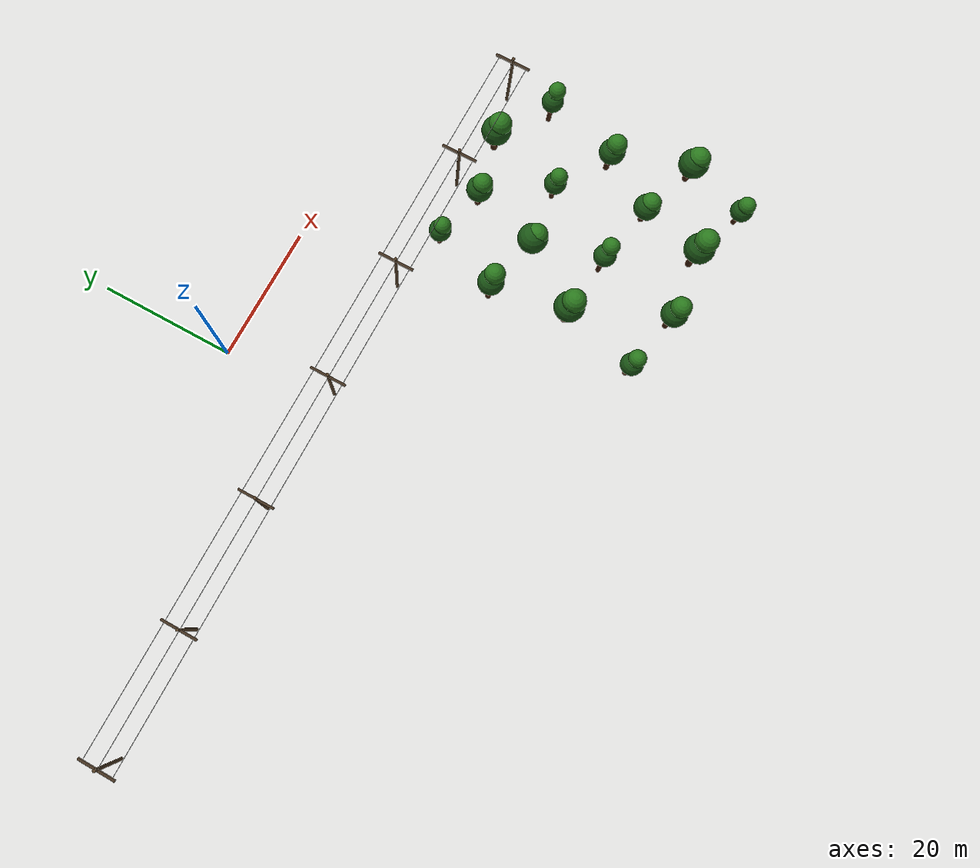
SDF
<sdf version="1.6">
 <world name="uav_complex_120m">
  <model name="tree_0">
   <static>true</static>
   <link name="trunk">
    <pose>0 0 1.44 0 0 0</pose>
    <collision name="collision">
     <geometry><cylinder><radius>0.352</radius><length>2.88</length></cylinder></geometry>
     <laser_retro>100</laser_retro>
     <surface><friction><ode><mu>1.0</mu><mu2>1.0</mu2></ode></friction></surface>
    </collision>
    <visual name="visual">
     <geometry><cylinder><radius>0.352</radius><length>2.88</length></cylinder></geometry>
     <material>
      <ambient>0.28 0.14 0.055 1</ambient>
      <diffuse>0.28 0.14 0.055 1</diffuse>
      <specular>0.08 0.08 0.08 1</specular>
     </material>
    </visual>
   </link>
   <link name="lower_crown">
    <pose>0 0 3.92 0 0 0</pose>
    <collision name="collision">
     <geometry><sphere><radius>1.6</radius></sphere></geometry>
     <laser_retro>100</laser_retro>
     <surface><friction><ode><mu>1.0</mu><mu2>1.0</mu2></ode></friction></surface>
    </collision>
    <visual name="visual">
     <geometry><sphere><radius>1.6</radius></sphere></geometry>
     <material>
      <ambient>0.1 0.33 0.08 1</ambient>
      <diffuse>0.1 0.33 0.08 1</diffuse>
      <specular>0.08 0.08 0.08 1</specular>
     </material>
    </visual>
   </link>
   <link name="upper_crown">
    <pose>0.288 -0.192 5.2 0 0 0</pose>
    <collision name="collision">
     <geometry><sphere><radius>1.248</radius></sphere></geometry>
     <laser_retro>100</laser_retro>
     <surface><friction><ode><mu>1.0</mu><mu2>1.0</mu2></ode></friction></surface>
    </collision>
    <visual name="visual">
     <geometry><sphere><radius>1.248</radius></sphere></geometry>
     <material>
      <ambient>0.16 0.46 0.11 1</ambient>
      <diffuse>0.16 0.46 0.11 1</diffuse>
      <specular>0.08 0.08 0.08 1</specular>
     </material>
    </visual>
   </link>
   <pose>29 -18 0 0 0 0</pose>
  </model>
  <model name="tree_1">
   <static>true</static>
   <link name="trunk">
    <pose>0 0 1.62 0 0 0</pose>
    <collision name="collision">
     <geometry><cylinder><radius>0.4136</radius><length>3.24</length></cylinder></geometry>
     <laser_retro>100</laser_retro>
     <surface><friction><ode><mu>1.0</mu><mu2>1.0</mu2></ode></friction></surface>
    </collision>
    <visual name="visual">
     <geometry><cylinder><radius>0.4136</radius><length>3.24</length></cylinder></geometry>
     <material>
      <ambient>0.28 0.14 0.055 1</ambient>
      <diffuse>0.28 0.14 0.055 1</diffuse>
      <specular>0.08 0.08 0.08 1</specular>
     </material>
    </visual>
   </link>
   <link name="lower_crown">
    <pose>0 0 4.462 0 0 0</pose>
    <collision name="collision">
     <geometry><sphere><radius>1.88</radius></sphere></geometry>
     <laser_retro>100</laser_retro>
     <surface><friction><ode><mu>1.0</mu><mu2>1.0</mu2></ode></friction></surface>
    </collision>
    <visual name="visual">
     <geometry><sphere><radius>1.88</radius></sphere></geometry>
     <material>
      <ambient>0.1 0.33 0.08 1</ambient>
      <diffuse>0.1 0.33 0.08 1</diffuse>
      <specular>0.08 0.08 0.08 1</specular>
     </material>
    </visual>
   </link>
   <link name="upper_crown">
    <pose>0.3384 -0.2256 5.81 0 0 0</pose>
    <collision name="collision">
     <geometry><sphere><radius>1.4664</radius></sphere></geometry>
     <laser_retro>100</laser_retro>
     <surface><friction><ode><mu>1.0</mu><mu2>1.0</mu2></ode></friction></surface>
    </collision>
    <visual name="visual">
     <geometry><sphere><radius>1.4664</radius></sphere></geometry>
     <material>
      <ambient>0.16 0.46 0.11 1</ambient>
      <diffuse>0.16 0.46 0.11 1</diffuse>
      <specular>0.08 0.08 0.08 1</specular>
     </material>
    </visual>
   </link>
   <pose>37 -20 0 0 0 0</pose>
  </model>
  <model name="tree_2">
   <static>true</static>
   <link name="trunk">
    <pose>0 0 1.8 0 0 0</pose>
    <collision name="collision">
     <geometry><cylinder><radius>0.4752</radius><length>3.6</length></cylinder></geometry>
     <laser_retro>100</laser_retro>
     <surface><friction><ode><mu>1.0</mu><mu2>1.0</mu2></ode></friction></surface>
    </collision>
    <visual name="visual">
     <geometry><cylinder><radius>0.4752</radius><length>3.6</length></cylinder></geometry>
     <material>
      <ambient>0.28 0.14 0.055 1</ambient>
      <diffuse>0.28 0.14 0.055 1</diffuse>
      <specular>0.08 0.08 0.08 1</specular>
     </material>
    </visual>
   </link>
   <link name="lower_crown">
    <pose>0 0 5.004 0 0 0</pose>
    <collision name="collision">
     <geometry><sphere><radius>2.16</radius></sphere></geometry>
     <laser_retro>100</laser_retro>
     <surface><friction><ode><mu>1.0</mu><mu2>1.0</mu2></ode></friction></surface>
    </collision>
    <visual name="visual">
     <geometry><sphere><radius>2.16</radius></sphere></geometry>
     <material>
      <ambient>0.1 0.33 0.08 1</ambient>
      <diffuse>0.1 0.33 0.08 1</diffuse>
      <specular>0.08 0.08 0.08 1</specular>
     </material>
    </visual>
   </link>
   <link name="upper_crown">
    <pose>0.3888 -0.2592 6.42 0 0 0</pose>
    <collision name="collision">
     <geometry><sphere><radius>1.6848</radius></sphere></geometry>
     <laser_retro>100</laser_retro>
     <surface><friction><ode><mu>1.0</mu><mu2>1.0</mu2></ode></friction></surface>
    </collision>
    <visual name="visual">
     <geometry><sphere><radius>1.6848</radius></sphere></geometry>
     <material>
      <ambient>0.16 0.46 0.11 1</ambient>
      <diffuse>0.16 0.46 0.11 1</diffuse>
      <specular>0.08 0.08 0.08 1</specular>
     </material>
    </visual>
   </link>
   <pose>46 -18 0 0 0 0</pose>
  </model>
  <model name="tree_3">
   <static>true</static>
   <link name="trunk">
    <pose>0 0 1.98 0 0 0</pose>
    <collision name="collision">
     <geometry><cylinder><radius>0.352</radius><length>3.96</length></cylinder></geometry>
     <laser_retro>100</laser_retro>
     <surface><friction><ode><mu>1.0</mu><mu2>1.0</mu2></ode></friction></surface>
    </collision>
    <visual name="visual">
     <geometry><cylinder><radius>0.352</radius><length>3.96</length></cylinder></geometry>
     <material>
      <ambient>0.28 0.14 0.055 1</ambient>
      <diffuse>0.28 0.14 0.055 1</diffuse>
      <specular>0.08 0.08 0.08 1</specular>
     </material>
    </visual>
   </link>
   <link name="lower_crown">
    <pose>0 0 5 0 0 0</pose>
    <collision name="collision">
     <geometry><sphere><radius>1.6</radius></sphere></geometry>
     <laser_retro>100</laser_retro>
     <surface><friction><ode><mu>1.0</mu><mu2>1.0</mu2></ode></friction></surface>
    </collision>
    <visual name="visual">
     <geometry><sphere><radius>1.6</radius></sphere></geometry>
     <material>
      <ambient>0.1 0.33 0.08 1</ambient>
      <diffuse>0.1 0.33 0.08 1</diffuse>
      <specular>0.08 0.08 0.08 1</specular>
     </material>
    </visual>
   </link>
   <link name="upper_crown">
    <pose>0.288 -0.192 7.45 0 0 0</pose>
    <collision name="collision">
     <geometry><sphere><radius>1.248</radius></sphere></geometry>
     <laser_retro>100</laser_retro>
     <surface><friction><ode><mu>1.0</mu><mu2>1.0</mu2></ode></friction></surface>
    </collision>
    <visual name="visual">
     <geometry><sphere><radius>1.248</radius></sphere></geometry>
     <material>
      <ambient>0.16 0.46 0.11 1</ambient>
      <diffuse>0.16 0.46 0.11 1</diffuse>
      <specular>0.08 0.08 0.08 1</specular>
     </material>
    </visual>
   </link>
   <pose>54 -23 0 0 0 0</pose>
  </model>
  <model name="tree_4">
   <static>true</static>
   <link name="trunk">
    <pose>0 0 2.16 0 0 0</pose>
    <collision name="collision">
     <geometry><cylinder><radius>0.4136</radius><length>4.32</length></cylinder></geometry>
     <laser_retro>100</laser_retro>
     <surface><friction><ode><mu>1.0</mu><mu2>1.0</mu2></ode></friction></surface>
    </collision>
    <visual name="visual">
     <geometry><cylinder><radius>0.4136</radius><length>4.32</length></cylinder></geometry>
     <material>
      <ambient>0.28 0.14 0.055 1</ambient>
      <diffuse>0.28 0.14 0.055 1</diffuse>
      <specular>0.08 0.08 0.08 1</specular>
     </material>
    </visual>
   </link>
   <link name="lower_crown">
    <pose>0 0 5.542 0 0 0</pose>
    <collision name="collision">
     <geometry><sphere><radius>1.88</radius></sphere></geometry>
     <laser_retro>100</laser_retro>
     <surface><friction><ode><mu>1.0</mu><mu2>1.0</mu2></ode></friction></surface>
    </collision>
    <visual name="visual">
     <geometry><sphere><radius>1.88</radius></sphere></geometry>
     <material>
      <ambient>0.1 0.33 0.08 1</ambient>
      <diffuse>0.1 0.33 0.08 1</diffuse>
      <specular>0.08 0.08 0.08 1</specular>
     </material>
    </visual>
   </link>
   <link name="upper_crown">
    <pose>0.3384 -0.2256 8.06 0 0 0</pose>
    <collision name="collision">
     <geometry><sphere><radius>1.4664</radius></sphere></geometry>
     <laser_retro>100</laser_retro>
     <surface><friction><ode><mu>1.0</mu><mu2>1.0</mu2></ode></friction></surface>
    </collision>
    <visual name="visual">
     <geometry><sphere><radius>1.4664</radius></sphere></geometry>
     <material>
      <ambient>0.16 0.46 0.11 1</ambient>
      <diffuse>0.16 0.46 0.11 1</diffuse>
      <specular>0.08 0.08 0.08 1</specular>
     </material>
    </visual>
   </link>
   <pose>25 -28 0 0 0 0</pose>
  </model>
  <model name="tree_5">
   <static>true</static>
   <link name="trunk">
    <pose>0 0 1.44 0 0 0</pose>
    <collision name="collision">
     <geometry><cylinder><radius>0.4752</radius><length>2.88</length></cylinder></geometry>
     <laser_retro>100</laser_retro>
     <surface><friction><ode><mu>1.0</mu><mu2>1.0</mu2></ode></friction></surface>
    </collision>
    <visual name="visual">
     <geometry><cylinder><radius>0.4752</radius><length>2.88</length></cylinder></geometry>
     <material>
      <ambient>0.28 0.14 0.055 1</ambient>
      <diffuse>0.28 0.14 0.055 1</diffuse>
      <specular>0.08 0.08 0.08 1</specular>
     </material>
    </visual>
   </link>
   <link name="lower_crown">
    <pose>0 0 4.284 0 0 0</pose>
    <collision name="collision">
     <geometry><sphere><radius>2.16</radius></sphere></geometry>
     <laser_retro>100</laser_retro>
     <surface><friction><ode><mu>1.0</mu><mu2>1.0</mu2></ode></friction></surface>
    </collision>
    <visual name="visual">
     <geometry><sphere><radius>2.16</radius></sphere></geometry>
     <material>
      <ambient>0.1 0.33 0.08 1</ambient>
      <diffuse>0.1 0.33 0.08 1</diffuse>
      <specular>0.08 0.08 0.08 1</specular>
     </material>
    </visual>
   </link>
   <link name="upper_crown">
    <pose>0.3888 -0.2592 4.92 0 0 0</pose>
    <collision name="collision">
     <geometry><sphere><radius>1.6848</radius></sphere></geometry>
     <laser_retro>100</laser_retro>
     <surface><friction><ode><mu>1.0</mu><mu2>1.0</mu2></ode></friction></surface>
    </collision>
    <visual name="visual">
     <geometry><sphere><radius>1.6848</radius></sphere></geometry>
     <material>
      <ambient>0.16 0.46 0.11 1</ambient>
      <diffuse>0.16 0.46 0.11 1</diffuse>
      <specular>0.08 0.08 0.08 1</specular>
     </material>
    </visual>
   </link>
   <pose>34 -30 0 0 0 0</pose>
  </model>
  <model name="tree_6">
   <static>true</static>
   <link name="trunk">
    <pose>0 0 1.62 0 0 0</pose>
    <collision name="collision">
     <geometry><cylinder><radius>0.352</radius><length>3.24</length></cylinder></geometry>
     <laser_retro>100</laser_retro>
     <surface><friction><ode><mu>1.0</mu><mu2>1.0</mu2></ode></friction></surface>
    </collision>
    <visual name="visual">
     <geometry><cylinder><radius>0.352</radius><length>3.24</length></cylinder></geometry>
     <material>
      <ambient>0.28 0.14 0.055 1</ambient>
      <diffuse>0.28 0.14 0.055 1</diffuse>
      <specular>0.08 0.08 0.08 1</specular>
     </material>
    </visual>
   </link>
   <link name="lower_crown">
    <pose>0 0 4.28 0 0 0</pose>
    <collision name="collision">
     <geometry><sphere><radius>1.6</radius></sphere></geometry>
     <laser_retro>100</laser_retro>
     <surface><friction><ode><mu>1.0</mu><mu2>1.0</mu2></ode></friction></surface>
    </collision>
    <visual name="visual">
     <geometry><sphere><radius>1.6</radius></sphere></geometry>
     <material>
      <ambient>0.1 0.33 0.08 1</ambient>
      <diffuse>0.1 0.33 0.08 1</diffuse>
      <specular>0.08 0.08 0.08 1</specular>
     </material>
    </visual>
   </link>
   <link name="upper_crown">
    <pose>0.288 -0.192 5.95 0 0 0</pose>
    <collision name="collision">
     <geometry><sphere><radius>1.248</radius></sphere></geometry>
     <laser_retro>100</laser_retro>
     <surface><friction><ode><mu>1.0</mu><mu2>1.0</mu2></ode></friction></surface>
    </collision>
    <visual name="visual">
     <geometry><sphere><radius>1.248</radius></sphere></geometry>
     <material>
      <ambient>0.16 0.46 0.11 1</ambient>
      <diffuse>0.16 0.46 0.11 1</diffuse>
      <specular>0.08 0.08 0.08 1</specular>
     </material>
    </visual>
   </link>
   <pose>43 -29 0 0 0 0</pose>
  </model>
  <model name="tree_7">
   <static>true</static>
   <link name="trunk">
    <pose>0 0 1.8 0 0 0</pose>
    <collision name="collision">
     <geometry><cylinder><radius>0.4136</radius><length>3.6</length></cylinder></geometry>
     <laser_retro>100</laser_retro>
     <surface><friction><ode><mu>1.0</mu><mu2>1.0</mu2></ode></friction></surface>
    </collision>
    <visual name="visual">
     <geometry><cylinder><radius>0.4136</radius><length>3.6</length></cylinder></geometry>
     <material>
      <ambient>0.28 0.14 0.055 1</ambient>
      <diffuse>0.28 0.14 0.055 1</diffuse>
      <specular>0.08 0.08 0.08 1</specular>
     </material>
    </visual>
   </link>
   <link name="lower_crown">
    <pose>0 0 4.822 0 0 0</pose>
    <collision name="collision">
     <geometry><sphere><radius>1.88</radius></sphere></geometry>
     <laser_retro>100</laser_retro>
     <surface><friction><ode><mu>1.0</mu><mu2>1.0</mu2></ode></friction></surface>
    </collision>
    <visual name="visual">
     <geometry><sphere><radius>1.88</radius></sphere></geometry>
     <material>
      <ambient>0.1 0.33 0.08 1</ambient>
      <diffuse>0.1 0.33 0.08 1</diffuse>
      <specular>0.08 0.08 0.08 1</specular>
     </material>
    </visual>
   </link>
   <link name="upper_crown">
    <pose>0.3384 -0.2256 6.56 0 0 0</pose>
    <collision name="collision">
     <geometry><sphere><radius>1.4664</radius></sphere></geometry>
     <laser_retro>100</laser_retro>
     <surface><friction><ode><mu>1.0</mu><mu2>1.0</mu2></ode></friction></surface>
    </collision>
    <visual name="visual">
     <geometry><sphere><radius>1.4664</radius></sphere></geometry>
     <material>
      <ambient>0.16 0.46 0.11 1</ambient>
      <diffuse>0.16 0.46 0.11 1</diffuse>
      <specular>0.08 0.08 0.08 1</specular>
     </material>
    </visual>
   </link>
   <pose>51 -34 0 0 0 0</pose>
  </model>
  <model name="tree_8">
   <static>true</static>
   <link name="trunk">
    <pose>0 0 1.98 0 0 0</pose>
    <collision name="collision">
     <geometry><cylinder><radius>0.4752</radius><length>3.96</length></cylinder></geometry>
     <laser_retro>100</laser_retro>
     <surface><friction><ode><mu>1.0</mu><mu2>1.0</mu2></ode></friction></surface>
    </collision>
    <visual name="visual">
     <geometry><cylinder><radius>0.4752</radius><length>3.96</length></cylinder></geometry>
     <material>
      <ambient>0.28 0.14 0.055 1</ambient>
      <diffuse>0.28 0.14 0.055 1</diffuse>
      <specular>0.08 0.08 0.08 1</specular>
     </material>
    </visual>
   </link>
   <link name="lower_crown">
    <pose>0 0 5.364 0 0 0</pose>
    <collision name="collision">
     <geometry><sphere><radius>2.16</radius></sphere></geometry>
     <laser_retro>100</laser_retro>
     <surface><friction><ode><mu>1.0</mu><mu2>1.0</mu2></ode></friction></surface>
    </collision>
    <visual name="visual">
     <geometry><sphere><radius>2.16</radius></sphere></geometry>
     <material>
      <ambient>0.1 0.33 0.08 1</ambient>
      <diffuse>0.1 0.33 0.08 1</diffuse>
      <specular>0.08 0.08 0.08 1</specular>
     </material>
    </visual>
   </link>
   <link name="upper_crown">
    <pose>0.3888 -0.2592 7.17 0 0 0</pose>
    <collision name="collision">
     <geometry><sphere><radius>1.6848</radius></sphere></geometry>
     <laser_retro>100</laser_retro>
     <surface><friction><ode><mu>1.0</mu><mu2>1.0</mu2></ode></friction></surface>
    </collision>
    <visual name="visual">
     <geometry><sphere><radius>1.6848</radius></sphere></geometry>
     <material>
      <ambient>0.16 0.46 0.11 1</ambient>
      <diffuse>0.16 0.46 0.11 1</diffuse>
      <specular>0.08 0.08 0.08 1</specular>
     </material>
    </visual>
   </link>
   <pose>27 -39 0 0 0 0</pose>
  </model>
  <model name="tree_9">
   <static>true</static>
   <link name="trunk">
    <pose>0 0 2.16 0 0 0</pose>
    <collision name="collision">
     <geometry><cylinder><radius>0.352</radius><length>4.32</length></cylinder></geometry>
     <laser_retro>100</laser_retro>
     <surface><friction><ode><mu>1.0</mu><mu2>1.0</mu2></ode></friction></surface>
    </collision>
    <visual name="visual">
     <geometry><cylinder><radius>0.352</radius><length>4.32</length></cylinder></geometry>
     <material>
      <ambient>0.28 0.14 0.055 1</ambient>
      <diffuse>0.28 0.14 0.055 1</diffuse>
      <specular>0.08 0.08 0.08 1</specular>
     </material>
    </visual>
   </link>
   <link name="lower_crown">
    <pose>0 0 5.36 0 0 0</pose>
    <collision name="collision">
     <geometry><sphere><radius>1.6</radius></sphere></geometry>
     <laser_retro>100</laser_retro>
     <surface><friction><ode><mu>1.0</mu><mu2>1.0</mu2></ode></friction></surface>
    </collision>
    <visual name="visual">
     <geometry><sphere><radius>1.6</radius></sphere></geometry>
     <material>
      <ambient>0.1 0.33 0.08 1</ambient>
      <diffuse>0.1 0.33 0.08 1</diffuse>
      <specular>0.08 0.08 0.08 1</specular>
     </material>
    </visual>
   </link>
   <link name="upper_crown">
    <pose>0.288 -0.192 8.2 0 0 0</pose>
    <collision name="collision">
     <geometry><sphere><radius>1.248</radius></sphere></geometry>
     <laser_retro>100</laser_retro>
     <surface><friction><ode><mu>1.0</mu><mu2>1.0</mu2></ode></friction></surface>
    </collision>
    <visual name="visual">
     <geometry><sphere><radius>1.248</radius></sphere></geometry>
     <material>
      <ambient>0.16 0.46 0.11 1</ambient>
      <diffuse>0.16 0.46 0.11 1</diffuse>
      <specular>0.08 0.08 0.08 1</specular>
     </material>
    </visual>
   </link>
   <pose>36 -40 0 0 0 0</pose>
  </model>
  <model name="tree_10">
   <static>true</static>
   <link name="trunk">
    <pose>0 0 1.44 0 0 0</pose>
    <collision name="collision">
     <geometry><cylinder><radius>0.4136</radius><length>2.88</length></cylinder></geometry>
     <laser_retro>100</laser_retro>
     <surface><friction><ode><mu>1.0</mu><mu2>1.0</mu2></ode></friction></surface>
    </collision>
    <visual name="visual">
     <geometry><cylinder><radius>0.4136</radius><length>2.88</length></cylinder></geometry>
     <material>
      <ambient>0.28 0.14 0.055 1</ambient>
      <diffuse>0.28 0.14 0.055 1</diffuse>
      <specular>0.08 0.08 0.08 1</specular>
     </material>
    </visual>
   </link>
   <link name="lower_crown">
    <pose>0 0 4.102 0 0 0</pose>
    <collision name="collision">
     <geometry><sphere><radius>1.88</radius></sphere></geometry>
     <laser_retro>100</laser_retro>
     <surface><friction><ode><mu>1.0</mu><mu2>1.0</mu2></ode></friction></surface>
    </collision>
    <visual name="visual">
     <geometry><sphere><radius>1.88</radius></sphere></geometry>
     <material>
      <ambient>0.1 0.33 0.08 1</ambient>
      <diffuse>0.1 0.33 0.08 1</diffuse>
      <specular>0.08 0.08 0.08 1</specular>
     </material>
    </visual>
   </link>
   <link name="upper_crown">
    <pose>0.3384 -0.2256 5.06 0 0 0</pose>
    <collision name="collision">
     <geometry><sphere><radius>1.4664</radius></sphere></geometry>
     <laser_retro>100</laser_retro>
     <surface><friction><ode><mu>1.0</mu><mu2>1.0</mu2></ode></friction></surface>
    </collision>
    <visual name="visual">
     <geometry><sphere><radius>1.4664</radius></sphere></geometry>
     <material>
      <ambient>0.16 0.46 0.11 1</ambient>
      <diffuse>0.16 0.46 0.11 1</diffuse>
      <specular>0.08 0.08 0.08 1</specular>
     </material>
    </visual>
   </link>
   <pose>46 -42 0 0 0 0</pose>
  </model>
  <model name="tree_11">
   <static>true</static>
   <link name="trunk">
    <pose>0 0 1.62 0 0 0</pose>
    <collision name="collision">
     <geometry><cylinder><radius>0.4752</radius><length>3.24</length></cylinder></geometry>
     <laser_retro>100</laser_retro>
     <surface><friction><ode><mu>1.0</mu><mu2>1.0</mu2></ode></friction></surface>
    </collision>
    <visual name="visual">
     <geometry><cylinder><radius>0.4752</radius><length>3.24</length></cylinder></geometry>
     <material>
      <ambient>0.28 0.14 0.055 1</ambient>
      <diffuse>0.28 0.14 0.055 1</diffuse>
      <specular>0.08 0.08 0.08 1</specular>
     </material>
    </visual>
   </link>
   <link name="lower_crown">
    <pose>0 0 4.644 0 0 0</pose>
    <collision name="collision">
     <geometry><sphere><radius>2.16</radius></sphere></geometry>
     <laser_retro>100</laser_retro>
     <surface><friction><ode><mu>1.0</mu><mu2>1.0</mu2></ode></friction></surface>
    </collision>
    <visual name="visual">
     <geometry><sphere><radius>2.16</radius></sphere></geometry>
     <material>
      <ambient>0.1 0.33 0.08 1</ambient>
      <diffuse>0.1 0.33 0.08 1</diffuse>
      <specular>0.08 0.08 0.08 1</specular>
     </material>
    </visual>
   </link>
   <link name="upper_crown">
    <pose>0.3888 -0.2592 5.67 0 0 0</pose>
    <collision name="collision">
     <geometry><sphere><radius>1.6848</radius></sphere></geometry>
     <laser_retro>100</laser_retro>
     <surface><friction><ode><mu>1.0</mu><mu2>1.0</mu2></ode></friction></surface>
    </collision>
    <visual name="visual">
     <geometry><sphere><radius>1.6848</radius></sphere></geometry>
     <material>
      <ambient>0.16 0.46 0.11 1</ambient>
      <diffuse>0.16 0.46 0.11 1</diffuse>
      <specular>0.08 0.08 0.08 1</specular>
     </material>
    </visual>
   </link>
   <pose>55 -45 0 0 0 0</pose>
  </model>
  <model name="tree_12">
   <static>true</static>
   <link name="trunk">
    <pose>0 0 1.8 0 0 0</pose>
    <collision name="collision">
     <geometry><cylinder><radius>0.352</radius><length>3.6</length></cylinder></geometry>
     <laser_retro>100</laser_retro>
     <surface><friction><ode><mu>1.0</mu><mu2>1.0</mu2></ode></friction></surface>
    </collision>
    <visual name="visual">
     <geometry><cylinder><radius>0.352</radius><length>3.6</length></cylinder></geometry>
     <material>
      <ambient>0.28 0.14 0.055 1</ambient>
      <diffuse>0.28 0.14 0.055 1</diffuse>
      <specular>0.08 0.08 0.08 1</specular>
     </material>
    </visual>
   </link>
   <link name="lower_crown">
    <pose>0 0 4.64 0 0 0</pose>
    <collision name="collision">
     <geometry><sphere><radius>1.6</radius></sphere></geometry>
     <laser_retro>100</laser_retro>
     <surface><friction><ode><mu>1.0</mu><mu2>1.0</mu2></ode></friction></surface>
    </collision>
    <visual name="visual">
     <geometry><sphere><radius>1.6</radius></sphere></geometry>
     <material>
      <ambient>0.1 0.33 0.08 1</ambient>
      <diffuse>0.1 0.33 0.08 1</diffuse>
      <specular>0.08 0.08 0.08 1</specular>
     </material>
    </visual>
   </link>
   <link name="upper_crown">
    <pose>0.288 -0.192 6.7 0 0 0</pose>
    <collision name="collision">
     <geometry><sphere><radius>1.248</radius></sphere></geometry>
     <laser_retro>100</laser_retro>
     <surface><friction><ode><mu>1.0</mu><mu2>1.0</mu2></ode></friction></surface>
    </collision>
    <visual name="visual">
     <geometry><sphere><radius>1.248</radius></sphere></geometry>
     <material>
      <ambient>0.16 0.46 0.11 1</ambient>
      <diffuse>0.16 0.46 0.11 1</diffuse>
      <specular>0.08 0.08 0.08 1</specular>
     </material>
    </visual>
   </link>
   <pose>24 -50 0 0 0 0</pose>
  </model>
  <model name="tree_13">
   <static>true</static>
   <link name="trunk">
    <pose>0 0 1.98 0 0 0</pose>
    <collision name="collision">
     <geometry><cylinder><radius>0.4136</radius><length>3.96</length></cylinder></geometry>
     <laser_retro>100</laser_retro>
     <surface><friction><ode><mu>1.0</mu><mu2>1.0</mu2></ode></friction></surface>
    </collision>
    <visual name="visual">
     <geometry><cylinder><radius>0.4136</radius><length>3.96</length></cylinder></geometry>
     <material>
      <ambient>0.28 0.14 0.055 1</ambient>
      <diffuse>0.28 0.14 0.055 1</diffuse>
      <specular>0.08 0.08 0.08 1</specular>
     </material>
    </visual>
   </link>
   <link name="lower_crown">
    <pose>0 0 5.182 0 0 0</pose>
    <collision name="collision">
     <geometry><sphere><radius>1.88</radius></sphere></geometry>
     <laser_retro>100</laser_retro>
     <surface><friction><ode><mu>1.0</mu><mu2>1.0</mu2></ode></friction></surface>
    </collision>
    <visual name="visual">
     <geometry><sphere><radius>1.88</radius></sphere></geometry>
     <material>
      <ambient>0.1 0.33 0.08 1</ambient>
      <diffuse>0.1 0.33 0.08 1</diffuse>
      <specular>0.08 0.08 0.08 1</specular>
     </material>
    </visual>
   </link>
   <link name="upper_crown">
    <pose>0.3384 -0.2256 7.31 0 0 0</pose>
    <collision name="collision">
     <geometry><sphere><radius>1.4664</radius></sphere></geometry>
     <laser_retro>100</laser_retro>
     <surface><friction><ode><mu>1.0</mu><mu2>1.0</mu2></ode></friction></surface>
    </collision>
    <visual name="visual">
     <geometry><sphere><radius>1.4664</radius></sphere></geometry>
     <material>
      <ambient>0.16 0.46 0.11 1</ambient>
      <diffuse>0.16 0.46 0.11 1</diffuse>
      <specular>0.08 0.08 0.08 1</specular>
     </material>
    </visual>
   </link>
   <pose>33 -52 0 0 0 0</pose>
  </model>
  <model name="tree_14">
   <static>true</static>
   <link name="trunk">
    <pose>0 0 2.16 0 0 0</pose>
    <collision name="collision">
     <geometry><cylinder><radius>0.4752</radius><length>4.32</length></cylinder></geometry>
     <laser_retro>100</laser_retro>
     <surface><friction><ode><mu>1.0</mu><mu2>1.0</mu2></ode></friction></surface>
    </collision>
    <visual name="visual">
     <geometry><cylinder><radius>0.4752</radius><length>4.32</length></cylinder></geometry>
     <material>
      <ambient>0.28 0.14 0.055 1</ambient>
      <diffuse>0.28 0.14 0.055 1</diffuse>
      <specular>0.08 0.08 0.08 1</specular>
     </material>
    </visual>
   </link>
   <link name="lower_crown">
    <pose>0 0 5.724 0 0 0</pose>
    <collision name="collision">
     <geometry><sphere><radius>2.16</radius></sphere></geometry>
     <laser_retro>100</laser_retro>
     <surface><friction><ode><mu>1.0</mu><mu2>1.0</mu2></ode></friction></surface>
    </collision>
    <visual name="visual">
     <geometry><sphere><radius>2.16</radius></sphere></geometry>
     <material>
      <ambient>0.1 0.33 0.08 1</ambient>
      <diffuse>0.1 0.33 0.08 1</diffuse>
      <specular>0.08 0.08 0.08 1</specular>
     </material>
    </visual>
   </link>
   <link name="upper_crown">
    <pose>0.3888 -0.2592 7.92 0 0 0</pose>
    <collision name="collision">
     <geometry><sphere><radius>1.6848</radius></sphere></geometry>
     <laser_retro>100</laser_retro>
     <surface><friction><ode><mu>1.0</mu><mu2>1.0</mu2></ode></friction></surface>
    </collision>
    <visual name="visual">
     <geometry><sphere><radius>1.6848</radius></sphere></geometry>
     <material>
      <ambient>0.16 0.46 0.11 1</ambient>
      <diffuse>0.16 0.46 0.11 1</diffuse>
      <specular>0.08 0.08 0.08 1</specular>
     </material>
    </visual>
   </link>
   <pose>43 -51 0 0 0 0</pose>
  </model>
  <model name="tree_15">
   <static>true</static>
   <link name="trunk">
    <pose>0 0 1.44 0 0 0</pose>
    <collision name="collision">
     <geometry><cylinder><radius>0.352</radius><length>2.88</length></cylinder></geometry>
     <laser_retro>100</laser_retro>
     <surface><friction><ode><mu>1.0</mu><mu2>1.0</mu2></ode></friction></surface>
    </collision>
    <visual name="visual">
     <geometry><cylinder><radius>0.352</radius><length>2.88</length></cylinder></geometry>
     <material>
      <ambient>0.28 0.14 0.055 1</ambient>
      <diffuse>0.28 0.14 0.055 1</diffuse>
      <specular>0.08 0.08 0.08 1</specular>
     </material>
    </visual>
   </link>
   <link name="lower_crown">
    <pose>0 0 3.92 0 0 0</pose>
    <collision name="collision">
     <geometry><sphere><radius>1.6</radius></sphere></geometry>
     <laser_retro>100</laser_retro>
     <surface><friction><ode><mu>1.0</mu><mu2>1.0</mu2></ode></friction></surface>
    </collision>
    <visual name="visual">
     <geometry><sphere><radius>1.6</radius></sphere></geometry>
     <material>
      <ambient>0.1 0.33 0.08 1</ambient>
      <diffuse>0.1 0.33 0.08 1</diffuse>
      <specular>0.08 0.08 0.08 1</specular>
     </material>
    </visual>
   </link>
   <link name="upper_crown">
    <pose>0.288 -0.192 5.2 0 0 0</pose>
    <collision name="collision">
     <geometry><sphere><radius>1.248</radius></sphere></geometry>
     <laser_retro>100</laser_retro>
     <surface><friction><ode><mu>1.0</mu><mu2>1.0</mu2></ode></friction></surface>
    </collision>
    <visual name="visual">
     <geometry><sphere><radius>1.248</radius></sphere></geometry>
     <material>
      <ambient>0.16 0.46 0.11 1</ambient>
      <diffuse>0.16 0.46 0.11 1</diffuse>
      <specular>0.08 0.08 0.08 1</specular>
     </material>
    </visual>
   </link>
   <pose>52 -54 0 0 0 0</pose>
  </model>
  <model name="power_line">
   <static>true</static>
   <link name="pole_0">
    <pose>-52 0 5.25 0 0 0</pose>
    <collision name="collision">
     <geometry><cylinder><radius>0.22</radius><length>10.5</length></cylinder></geometry>
     <laser_retro>100</laser_retro>
     <surface><friction><ode><mu>1.0</mu><mu2>1.0</mu2></ode></friction></surface>
    </collision>
    <visual name="visual">
     <geometry><cylinder><radius>0.22</radius><length>10.5</length></cylinder></geometry>
     <material>
      <ambient>0.3 0.22 0.13 1</ambient>
      <diffuse>0.3 0.22 0.13 1</diffuse>
      <specular>0.08 0.08 0.08 1</specular>
     </material>
    </visual>
   </link>
   <link name="crossbar_0">
    <pose>-52 0 9.6 0 0 0</pose>
    <collision name="collision">
     <geometry><box><size>0.32 5.2 0.28</size></box></geometry>
     <laser_retro>100</laser_retro>
     <surface><friction><ode><mu>1.0</mu><mu2>1.0</mu2></ode></friction></surface>
    </collision>
    <visual name="visual">
     <geometry><box><size>0.32 5.2 0.28</size></box></geometry>
     <material>
      <ambient>0.26 0.19 0.12 1</ambient>
      <diffuse>0.26 0.19 0.12 1</diffuse>
      <specular>0.08 0.08 0.08 1</specular>
     </material>
    </visual>
   </link>
   <link name="pole_1">
    <pose>-34 0 5.25 0 0 0</pose>
    <collision name="collision">
     <geometry><cylinder><radius>0.22</radius><length>10.5</length></cylinder></geometry>
     <laser_retro>100</laser_retro>
     <surface><friction><ode><mu>1.0</mu><mu2>1.0</mu2></ode></friction></surface>
    </collision>
    <visual name="visual">
     <geometry><cylinder><radius>0.22</radius><length>10.5</length></cylinder></geometry>
     <material>
      <ambient>0.3 0.22 0.13 1</ambient>
      <diffuse>0.3 0.22 0.13 1</diffuse>
      <specular>0.08 0.08 0.08 1</specular>
     </material>
    </visual>
   </link>
   <link name="crossbar_1">
    <pose>-34 0 9.6 0 0 0</pose>
    <collision name="collision">
     <geometry><box><size>0.32 5.2 0.28</size></box></geometry>
     <laser_retro>100</laser_retro>
     <surface><friction><ode><mu>1.0</mu><mu2>1.0</mu2></ode></friction></surface>
    </collision>
    <visual name="visual">
     <geometry><box><size>0.32 5.2 0.28</size></box></geometry>
     <material>
      <ambient>0.26 0.19 0.12 1</ambient>
      <diffuse>0.26 0.19 0.12 1</diffuse>
      <specular>0.08 0.08 0.08 1</specular>
     </material>
    </visual>
   </link>
   <link name="pole_2">
    <pose>-16 0 5.25 0 0 0</pose>
    <collision name="collision">
     <geometry><cylinder><radius>0.22</radius><length>10.5</length></cylinder></geometry>
     <laser_retro>100</laser_retro>
     <surface><friction><ode><mu>1.0</mu><mu2>1.0</mu2></ode></friction></surface>
    </collision>
    <visual name="visual">
     <geometry><cylinder><radius>0.22</radius><length>10.5</length></cylinder></geometry>
     <material>
      <ambient>0.3 0.22 0.13 1</ambient>
      <diffuse>0.3 0.22 0.13 1</diffuse>
      <specular>0.08 0.08 0.08 1</specular>
     </material>
    </visual>
   </link>
   <link name="crossbar_2">
    <pose>-16 0 9.6 0 0 0</pose>
    <collision name="collision">
     <geometry><box><size>0.32 5.2 0.28</size></box></geometry>
     <laser_retro>100</laser_retro>
     <surface><friction><ode><mu>1.0</mu><mu2>1.0</mu2></ode></friction></surface>
    </collision>
    <visual name="visual">
     <geometry><box><size>0.32 5.2 0.28</size></box></geometry>
     <material>
      <ambient>0.26 0.19 0.12 1</ambient>
      <diffuse>0.26 0.19 0.12 1</diffuse>
      <specular>0.08 0.08 0.08 1</specular>
     </material>
    </visual>
   </link>
   <link name="pole_3">
    <pose>2 0 5.25 0 0 0</pose>
    <collision name="collision">
     <geometry><cylinder><radius>0.22</radius><length>10.5</length></cylinder></geometry>
     <laser_retro>100</laser_retro>
     <surface><friction><ode><mu>1.0</mu><mu2>1.0</mu2></ode></friction></surface>
    </collision>
    <visual name="visual">
     <geometry><cylinder><radius>0.22</radius><length>10.5</length></cylinder></geometry>
     <material>
      <ambient>0.3 0.22 0.13 1</ambient>
      <diffuse>0.3 0.22 0.13 1</diffuse>
      <specular>0.08 0.08 0.08 1</specular>
     </material>
    </visual>
   </link>
   <link name="crossbar_3">
    <pose>2 0 9.6 0 0 0</pose>
    <collision name="collision">
     <geometry><box><size>0.32 5.2 0.28</size></box></geometry>
     <laser_retro>100</laser_retro>
     <surface><friction><ode><mu>1.0</mu><mu2>1.0</mu2></ode></friction></surface>
    </collision>
    <visual name="visual">
     <geometry><box><size>0.32 5.2 0.28</size></box></geometry>
     <material>
      <ambient>0.26 0.19 0.12 1</ambient>
      <diffuse>0.26 0.19 0.12 1</diffuse>
      <specular>0.08 0.08 0.08 1</specular>
     </material>
    </visual>
   </link>
   <link name="pole_4">
    <pose>20 0 5.25 0 0 0</pose>
    <collision name="collision">
     <geometry><cylinder><radius>0.22</radius><length>10.5</length></cylinder></geometry>
     <laser_retro>100</laser_retro>
     <surface><friction><ode><mu>1.0</mu><mu2>1.0</mu2></ode></friction></surface>
    </collision>
    <visual name="visual">
     <geometry><cylinder><radius>0.22</radius><length>10.5</length></cylinder></geometry>
     <material>
      <ambient>0.3 0.22 0.13 1</ambient>
      <diffuse>0.3 0.22 0.13 1</diffuse>
      <specular>0.08 0.08 0.08 1</specular>
     </material>
    </visual>
   </link>
   <link name="crossbar_4">
    <pose>20 0 9.6 0 0 0</pose>
    <collision name="collision">
     <geometry><box><size>0.32 5.2 0.28</size></box></geometry>
     <laser_retro>100</laser_retro>
     <surface><friction><ode><mu>1.0</mu><mu2>1.0</mu2></ode></friction></surface>
    </collision>
    <visual name="visual">
     <geometry><box><size>0.32 5.2 0.28</size></box></geometry>
     <material>
      <ambient>0.26 0.19 0.12 1</ambient>
      <diffuse>0.26 0.19 0.12 1</diffuse>
      <specular>0.08 0.08 0.08 1</specular>
     </material>
    </visual>
   </link>
   <link name="pole_5">
    <pose>38 0 5.25 0 0 0</pose>
    <collision name="collision">
     <geometry><cylinder><radius>0.22</radius><length>10.5</length></cylinder></geometry>
     <laser_retro>100</laser_retro>
     <surface><friction><ode><mu>1.0</mu><mu2>1.0</mu2></ode></friction></surface>
    </collision>
    <visual name="visual">
     <geometry><cylinder><radius>0.22</radius><length>10.5</length></cylinder></geometry>
     <material>
      <ambient>0.3 0.22 0.13 1</ambient>
      <diffuse>0.3 0.22 0.13 1</diffuse>
      <specular>0.08 0.08 0.08 1</specular>
     </material>
    </visual>
   </link>
   <link name="crossbar_5">
    <pose>38 0 9.6 0 0 0</pose>
    <collision name="collision">
     <geometry><box><size>0.32 5.2 0.28</size></box></geometry>
     <laser_retro>100</laser_retro>
     <surface><friction><ode><mu>1.0</mu><mu2>1.0</mu2></ode></friction></surface>
    </collision>
    <visual name="visual">
     <geometry><box><size>0.32 5.2 0.28</size></box></geometry>
     <material>
      <ambient>0.26 0.19 0.12 1</ambient>
      <diffuse>0.26 0.19 0.12 1</diffuse>
      <specular>0.08 0.08 0.08 1</specular>
     </material>
    </visual>
   </link>
   <link name="pole_6">
    <pose>54 0 5.25 0 0 0</pose>
    <collision name="collision">
     <geometry><cylinder><radius>0.22</radius><length>10.5</length></cylinder></geometry>
     <laser_retro>100</laser_retro>
     <surface><friction><ode><mu>1.0</mu><mu2>1.0</mu2></ode></friction></surface>
    </collision>
    <visual name="visual">
     <geometry><cylinder><radius>0.22</radius><length>10.5</length></cylinder></geometry>
     <material>
      <ambient>0.3 0.22 0.13 1</ambient>
      <diffuse>0.3 0.22 0.13 1</diffuse>
      <specular>0.08 0.08 0.08 1</specular>
     </material>
    </visual>
   </link>
   <link name="crossbar_6">
    <pose>54 0 9.6 0 0 0</pose>
    <collision name="collision">
     <geometry><box><size>0.32 5.2 0.28</size></box></geometry>
     <laser_retro>100</laser_retro>
     <surface><friction><ode><mu>1.0</mu><mu2>1.0</mu2></ode></friction></surface>
    </collision>
    <visual name="visual">
     <geometry><box><size>0.32 5.2 0.28</size></box></geometry>
     <material>
      <ambient>0.26 0.19 0.12 1</ambient>
      <diffuse>0.26 0.19 0.12 1</diffuse>
      <specular>0.08 0.08 0.08 1</specular>
     </material>
    </visual>
   </link>
   <link name="wire_0_0">
    <pose>-43 -2.1 9.35 0 1.5708 0</pose>
    <collision name="collision">
     <geometry><cylinder><radius>0.035</radius><length>18</length></cylinder></geometry>
     <laser_retro>5</laser_retro>
     <surface><friction><ode><mu>1.0</mu><mu2>1.0</mu2></ode></friction></surface>
    </collision>
    <visual name="visual">
     <geometry><cylinder><radius>0.035</radius><length>18</length></cylinder></geometry>
     <material>
      <ambient>0.055 0.055 0.055 1</ambient>
      <diffuse>0.055 0.055 0.055 1</diffuse>
      <specular>0.005 0.005 0.005 1</specular>
     </material>
    </visual>
   </link>
   <link name="wire_0_1">
    <pose>-43 0 9.2 0 1.5708 0</pose>
    <collision name="collision">
     <geometry><cylinder><radius>0.035</radius><length>18</length></cylinder></geometry>
     <laser_retro>5</laser_retro>
     <surface><friction><ode><mu>1.0</mu><mu2>1.0</mu2></ode></friction></surface>
    </collision>
    <visual name="visual">
     <geometry><cylinder><radius>0.035</radius><length>18</length></cylinder></geometry>
     <material>
      <ambient>0.055 0.055 0.055 1</ambient>
      <diffuse>0.055 0.055 0.055 1</diffuse>
      <specular>0.005 0.005 0.005 1</specular>
     </material>
    </visual>
   </link>
   <link name="wire_0_2">
    <pose>-43 2.1 9.35 0 1.5708 0</pose>
    <collision name="collision">
     <geometry><cylinder><radius>0.035</radius><length>18</length></cylinder></geometry>
     <laser_retro>5</laser_retro>
     <surface><friction><ode><mu>1.0</mu><mu2>1.0</mu2></ode></friction></surface>
    </collision>
    <visual name="visual">
     <geometry><cylinder><radius>0.035</radius><length>18</length></cylinder></geometry>
     <material>
      <ambient>0.055 0.055 0.055 1</ambient>
      <diffuse>0.055 0.055 0.055 1</diffuse>
      <specular>0.005 0.005 0.005 1</specular>
     </material>
    </visual>
   </link>
   <link name="wire_1_0">
    <pose>-25 -2.1 9.35 0 1.5708 0</pose>
    <collision name="collision">
     <geometry><cylinder><radius>0.035</radius><length>18</length></cylinder></geometry>
     <laser_retro>5</laser_retro>
     <surface><friction><ode><mu>1.0</mu><mu2>1.0</mu2></ode></friction></surface>
    </collision>
    <visual name="visual">
     <geometry><cylinder><radius>0.035</radius><length>18</length></cylinder></geometry>
     <material>
      <ambient>0.055 0.055 0.055 1</ambient>
      <diffuse>0.055 0.055 0.055 1</diffuse>
      <specular>0.005 0.005 0.005 1</specular>
     </material>
    </visual>
   </link>
   <link name="wire_1_1">
    <pose>-25 0 9.2 0 1.5708 0</pose>
    <collision name="collision">
     <geometry><cylinder><radius>0.035</radius><length>18</length></cylinder></geometry>
     <laser_retro>5</laser_retro>
     <surface><friction><ode><mu>1.0</mu><mu2>1.0</mu2></ode></friction></surface>
    </collision>
    <visual name="visual">
     <geometry><cylinder><radius>0.035</radius><length>18</length></cylinder></geometry>
     <material>
      <ambient>0.055 0.055 0.055 1</ambient>
      <diffuse>0.055 0.055 0.055 1</diffuse>
      <specular>0.005 0.005 0.005 1</specular>
     </material>
    </visual>
   </link>
   <link name="wire_1_2">
    <pose>-25 2.1 9.35 0 1.5708 0</pose>
    <collision name="collision">
     <geometry><cylinder><radius>0.035</radius><length>18</length></cylinder></geometry>
     <laser_retro>5</laser_retro>
     <surface><friction><ode><mu>1.0</mu><mu2>1.0</mu2></ode></friction></surface>
    </collision>
    <visual name="visual">
     <geometry><cylinder><radius>0.035</radius><length>18</length></cylinder></geometry>
     <material>
      <ambient>0.055 0.055 0.055 1</ambient>
      <diffuse>0.055 0.055 0.055 1</diffuse>
      <specular>0.005 0.005 0.005 1</specular>
     </material>
    </visual>
   </link>
   <link name="wire_2_0">
    <pose>-7 -2.1 9.35 0 1.5708 0</pose>
    <collision name="collision">
     <geometry><cylinder><radius>0.035</radius><length>18</length></cylinder></geometry>
     <laser_retro>5</laser_retro>
     <surface><friction><ode><mu>1.0</mu><mu2>1.0</mu2></ode></friction></surface>
    </collision>
    <visual name="visual">
     <geometry><cylinder><radius>0.035</radius><length>18</length></cylinder></geometry>
     <material>
      <ambient>0.055 0.055 0.055 1</ambient>
      <diffuse>0.055 0.055 0.055 1</diffuse>
      <specular>0.005 0.005 0.005 1</specular>
     </material>
    </visual>
   </link>
   <link name="wire_2_1">
    <pose>-7 0 9.2 0 1.5708 0</pose>
    <collision name="collision">
     <geometry><cylinder><radius>0.035</radius><length>18</length></cylinder></geometry>
     <laser_retro>5</laser_retro>
     <surface><friction><ode><mu>1.0</mu><mu2>1.0</mu2></ode></friction></surface>
    </collision>
    <visual name="visual">
     <geometry><cylinder><radius>0.035</radius><length>18</length></cylinder></geometry>
     <material>
      <ambient>0.055 0.055 0.055 1</ambient>
      <diffuse>0.055 0.055 0.055 1</diffuse>
      <specular>0.005 0.005 0.005 1</specular>
     </material>
    </visual>
   </link>
   <link name="wire_2_2">
    <pose>-7 2.1 9.35 0 1.5708 0</pose>
    <collision name="collision">
     <geometry><cylinder><radius>0.035</radius><length>18</length></cylinder></geometry>
     <laser_retro>5</laser_retro>
     <surface><friction><ode><mu>1.0</mu><mu2>1.0</mu2></ode></friction></surface>
    </collision>
    <visual name="visual">
     <geometry><cylinder><radius>0.035</radius><length>18</length></cylinder></geometry>
     <material>
      <ambient>0.055 0.055 0.055 1</ambient>
      <diffuse>0.055 0.055 0.055 1</diffuse>
      <specular>0.005 0.005 0.005 1</specular>
     </material>
    </visual>
   </link>
   <link name="wire_3_0">
    <pose>11 -2.1 9.35 0 1.5708 0</pose>
    <collision name="collision">
     <geometry><cylinder><radius>0.035</radius><length>18</length></cylinder></geometry>
     <laser_retro>5</laser_retro>
     <surface><friction><ode><mu>1.0</mu><mu2>1.0</mu2></ode></friction></surface>
    </collision>
    <visual name="visual">
     <geometry><cylinder><radius>0.035</radius><length>18</length></cylinder></geometry>
     <material>
      <ambient>0.055 0.055 0.055 1</ambient>
      <diffuse>0.055 0.055 0.055 1</diffuse>
      <specular>0.005 0.005 0.005 1</specular>
     </material>
    </visual>
   </link>
   <link name="wire_3_1">
    <pose>11 0 9.2 0 1.5708 0</pose>
    <collision name="collision">
     <geometry><cylinder><radius>0.035</radius><length>18</length></cylinder></geometry>
     <laser_retro>5</laser_retro>
     <surface><friction><ode><mu>1.0</mu><mu2>1.0</mu2></ode></friction></surface>
    </collision>
    <visual name="visual">
     <geometry><cylinder><radius>0.035</radius><length>18</length></cylinder></geometry>
     <material>
      <ambient>0.055 0.055 0.055 1</ambient>
      <diffuse>0.055 0.055 0.055 1</diffuse>
      <specular>0.005 0.005 0.005 1</specular>
     </material>
    </visual>
   </link>
   <link name="wire_3_2">
    <pose>11 2.1 9.35 0 1.5708 0</pose>
    <collision name="collision">
     <geometry><cylinder><radius>0.035</radius><length>18</length></cylinder></geometry>
     <laser_retro>5</laser_retro>
     <surface><friction><ode><mu>1.0</mu><mu2>1.0</mu2></ode></friction></surface>
    </collision>
    <visual name="visual">
     <geometry><cylinder><radius>0.035</radius><length>18</length></cylinder></geometry>
     <material>
      <ambient>0.055 0.055 0.055 1</ambient>
      <diffuse>0.055 0.055 0.055 1</diffuse>
      <specular>0.005 0.005 0.005 1</specular>
     </material>
    </visual>
   </link>
   <link name="wire_4_0">
    <pose>29 -2.1 9.35 0 1.5708 0</pose>
    <collision name="collision">
     <geometry><cylinder><radius>0.035</radius><length>18</length></cylinder></geometry>
     <laser_retro>5</laser_retro>
     <surface><friction><ode><mu>1.0</mu><mu2>1.0</mu2></ode></friction></surface>
    </collision>
    <visual name="visual">
     <geometry><cylinder><radius>0.035</radius><length>18</length></cylinder></geometry>
     <material>
      <ambient>0.055 0.055 0.055 1</ambient>
      <diffuse>0.055 0.055 0.055 1</diffuse>
      <specular>0.005 0.005 0.005 1</specular>
     </material>
    </visual>
   </link>
   <link name="wire_4_1">
    <pose>29 0 9.2 0 1.5708 0</pose>
    <collision name="collision">
     <geometry><cylinder><radius>0.035</radius><length>18</length></cylinder></geometry>
     <laser_retro>5</laser_retro>
     <surface><friction><ode><mu>1.0</mu><mu2>1.0</mu2></ode></friction></surface>
    </collision>
    <visual name="visual">
     <geometry><cylinder><radius>0.035</radius><length>18</length></cylinder></geometry>
     <material>
      <ambient>0.055 0.055 0.055 1</ambient>
      <diffuse>0.055 0.055 0.055 1</diffuse>
      <specular>0.005 0.005 0.005 1</specular>
     </material>
    </visual>
   </link>
   <link name="wire_4_2">
    <pose>29 2.1 9.35 0 1.5708 0</pose>
    <collision name="collision">
     <geometry><cylinder><radius>0.035</radius><length>18</length></cylinder></geometry>
     <laser_retro>5</laser_retro>
     <surface><friction><ode><mu>1.0</mu><mu2>1.0</mu2></ode></friction></surface>
    </collision>
    <visual name="visual">
     <geometry><cylinder><radius>0.035</radius><length>18</length></cylinder></geometry>
     <material>
      <ambient>0.055 0.055 0.055 1</ambient>
      <diffuse>0.055 0.055 0.055 1</diffuse>
      <specular>0.005 0.005 0.005 1</specular>
     </material>
    </visual>
   </link>
   <link name="wire_5_0">
    <pose>46 -2.1 9.35 0 1.5708 0</pose>
    <collision name="collision">
     <geometry><cylinder><radius>0.035</radius><length>16</length></cylinder></geometry>
     <laser_retro>5</laser_retro>
     <surface><friction><ode><mu>1.0</mu><mu2>1.0</mu2></ode></friction></surface>
    </collision>
    <visual name="visual">
     <geometry><cylinder><radius>0.035</radius><length>16</length></cylinder></geometry>
     <material>
      <ambient>0.055 0.055 0.055 1</ambient>
      <diffuse>0.055 0.055 0.055 1</diffuse>
      <specular>0.005 0.005 0.005 1</specular>
     </material>
    </visual>
   </link>
   <link name="wire_5_1">
    <pose>46 0 9.2 0 1.5708 0</pose>
    <collision name="collision">
     <geometry><cylinder><radius>0.035</radius><length>16</length></cylinder></geometry>
     <laser_retro>5</laser_retro>
     <surface><friction><ode><mu>1.0</mu><mu2>1.0</mu2></ode></friction></surface>
    </collision>
    <visual name="visual">
     <geometry><cylinder><radius>0.035</radius><length>16</length></cylinder></geometry>
     <material>
      <ambient>0.055 0.055 0.055 1</ambient>
      <diffuse>0.055 0.055 0.055 1</diffuse>
      <specular>0.005 0.005 0.005 1</specular>
     </material>
    </visual>
   </link>
   <link name="wire_5_2">
    <pose>46 2.1 9.35 0 1.5708 0</pose>
    <collision name="collision">
     <geometry><cylinder><radius>0.035</radius><length>16</length></cylinder></geometry>
     <laser_retro>5</laser_retro>
     <surface><friction><ode><mu>1.0</mu><mu2>1.0</mu2></ode></friction></surface>
    </collision>
    <visual name="visual">
     <geometry><cylinder><radius>0.035</radius><length>16</length></cylinder></geometry>
     <material>
      <ambient>0.055 0.055 0.055 1</ambient>
      <diffuse>0.055 0.055 0.055 1</diffuse>
      <specular>0.005 0.005 0.005 1</specular>
     </material>
    </visual>
   </link>
   <pose>0 -16 0 0 0 0</pose>
  </model>
 </world>
</sdf>
